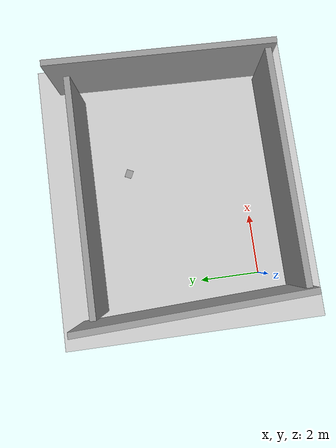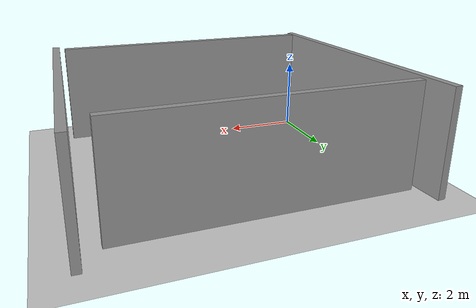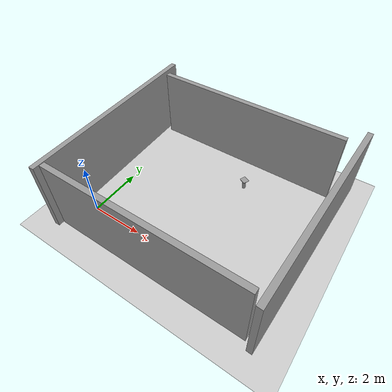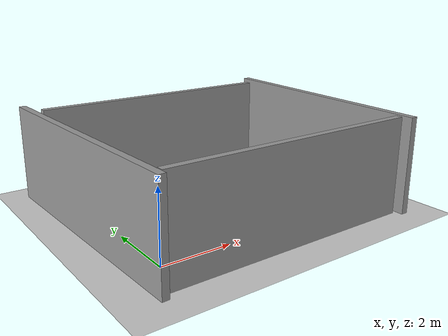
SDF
<sdf version="1.7">
 <world name="default">
  <light name="sun" type="directional">
   <pose>0 0 10 0 -0 0</pose>
   <diffuse>0.8 0.8 0.8 1</diffuse>
   <specular>0.2 0.2 0.2 1</specular>
   <attenuation>
    <range>1000</range>
    <constant>0.9</constant>
    <linear>0.01</linear>
    <quadratic>0.001</quadratic>
   </attenuation>
   <direction>-0.5 0.1 -0.9</direction>
   <spot><inner_angle>0</inner_angle><outer_angle>0</outer_angle><falloff>0</falloff></spot>
  </light>
  <model name="ground_plane">
   <static>1</static>
   <link name="link">
    <collision name="collision">
     <geometry><plane><normal>0 0 1</normal><size>100 100</size></plane></geometry>
     <surface>
      <contact><collide_bitmask>65535</collide_bitmask></contact>
      <friction><ode><mu>100</mu><mu2>50</mu2></ode></friction>
     </surface>
    </collision>
    <visual name="visual">
     <cast_shadows>0</cast_shadows>
     <geometry><plane><normal>0 0 1</normal><size>100 100</size></plane></geometry>
     <material>
      <script><uri>file://media/materials/scripts/gazebo.material</uri><name>Gazebo/Grey</name></script>
     </material>
    </visual>
   </link>
  </model>
  <gravity>0 0 -9.8</gravity>
  <magnetic_field>6e-06 2.3e-05 -4.2e-05</magnetic_field>
  <atmosphere type="adiabatic"/>
  <physics type="ode">
   <max_step_size>0.001</max_step_size>
   <real_time_factor>1</real_time_factor>
   <real_time_update_rate>1000</real_time_update_rate>
  </physics>
  <scene><ambient>0.4 0.4 0.4 1</ambient><background>0.7 0.7 0.7 1</background><shadows>1</shadows></scene>
  <spherical_coordinates>
   <surface_model>EARTH_WGS84</surface_model>
   <latitude_deg>0</latitude_deg>
   <longitude_deg>0</longitude_deg>
   <elevation>0</elevation>
   <heading_deg>0</heading_deg>
  </spherical_coordinates>
  <model name="unit_cylinder">
   <pose>4.0 4.0 0.180505 0.001205 -0.006258 0.037878</pose>
   <link name="link">
    <inertial>
     <mass>1</mass>
     <inertia><ixx>0.145833</ixx><ixy>0</ixy><ixz>0</ixz><iyy>0.145833</iyy><iyz>0</iyz><izz>0.125</izz></inertia>
    </inertial>
    <collision name="collision">
     <geometry><cylinder><radius>0.067548</radius><length>0.4</length></cylinder></geometry>
    </collision>
    <visual name="visual">
     <geometry><cylinder><radius>0.067548</radius><length>0.4</length></cylinder></geometry>
     <material>
      <script><name>Gazebo/Grey</name><uri>file://media/materials/scripts/gazebo.material</uri></script>
     </material>
    </visual>
   </link>
  </model>
  <model name="unit_box">
   <pose>4.0 4.0 0.39074 0.00725 -0.008958 -0.435349</pose>
   <link name="link">
    <inertial>
     <mass>1</mass>
     <inertia>
      <ixx>0.166667</ixx>
      <ixy>0</ixy>
      <ixz>0</ixz>
      <iyy>0.166667</iyy>
      <iyz>0</iyz>
      <izz>0.166667</izz>
     </inertia>
    </inertial>
    <collision name="collision">
     <geometry><box><size>0.274599 0.239249 0.0212942</size></box></geometry>
    </collision>
    <visual name="visual">
     <geometry><box><size>0.274599 0.239249 0.0212942</size></box></geometry>
     <material>
      <script><name>Gazebo/Grey</name><uri>file://media/materials/scripts/gazebo.material</uri></script>
     </material>
    </visual>
   </link>
  </model>
  <model name="grey_wall">
   <static>1</static>
   <link name="link">
    <pose>0 0 1.4 0 -0 0</pose>
    <collision name="collision"><geometry><box><size>7.5 0.2 2.8</size></box></geometry></collision>
    <visual name="visual">
     <cast_shadows>0</cast_shadows>
     <geometry><box><size>7.5 0.2 2.8</size></box></geometry>
     <material>
      <script>
       <uri>model://grey_wall/materials/scripts</uri>
       <uri>model://grey_wall/materials/textures</uri>
       <name>vrc/grey_wall</name>
      </script>
     </material>
    </visual>
   </link>
   <pose>3.14341 5.40012 0 0 -0 0</pose>
  </model>
  <model name="grey_wall_0">
   <static>1</static>
   <link name="link">
    <pose>0 0 1.4 0 -0 0</pose>
    <collision name="collision"><geometry><box><size>7.5 0.2 2.8</size></box></geometry></collision>
    <visual name="visual">
     <cast_shadows>0</cast_shadows>
     <geometry><box><size>7.5 0.2 2.8</size></box></geometry>
     <material>
      <script>
       <uri>model://grey_wall/materials/scripts</uri>
       <uri>model://grey_wall/materials/textures</uri>
       <name>vrc/grey_wall</name>
      </script>
     </material>
    </visual>
   </link>
   <pose>3.22451 -1.00525 0 0 -0 0</pose>
  </model>
  <model name="grey_wall_1">
   <static>1</static>
   <link name="link">
    <pose>0 0 1.4 0 -0 0</pose>
    <collision name="collision"><geometry><box><size>7.5 0.2 2.8</size></box></geometry></collision>
    <visual name="visual">
     <cast_shadows>0</cast_shadows>
     <geometry><box><size>7.5 0.2 2.8</size></box></geometry>
     <material>
      <script>
       <uri>model://grey_wall/materials/scripts</uri>
       <uri>model://grey_wall/materials/textures</uri>
       <name>vrc/grey_wall</name>
      </script>
     </material>
    </visual>
   </link>
   <pose>-0.782383 2.43125 0 0 -0 1.60777</pose>
  </model>
  <model name="grey_wall_2">
   <static>1</static>
   <link name="link">
    <pose>0 0 1.4 0 -0 0</pose>
    <collision name="collision"><geometry><box><size>7.5 0.2 2.8</size></box></geometry></collision>
    <visual name="visual">
     <cast_shadows>0</cast_shadows>
     <geometry><box><size>7.5 0.2 2.8</size></box></geometry>
     <material>
      <script>
       <uri>model://grey_wall/materials/scripts</uri>
       <uri>model://grey_wall/materials/textures</uri>
       <name>vrc/grey_wall</name>
      </script>
     </material>
    </visual>
   </link>
   <pose>7.32596 2.42094 0 0 -0 1.53962</pose>
  </model>
 </world>
</sdf>
